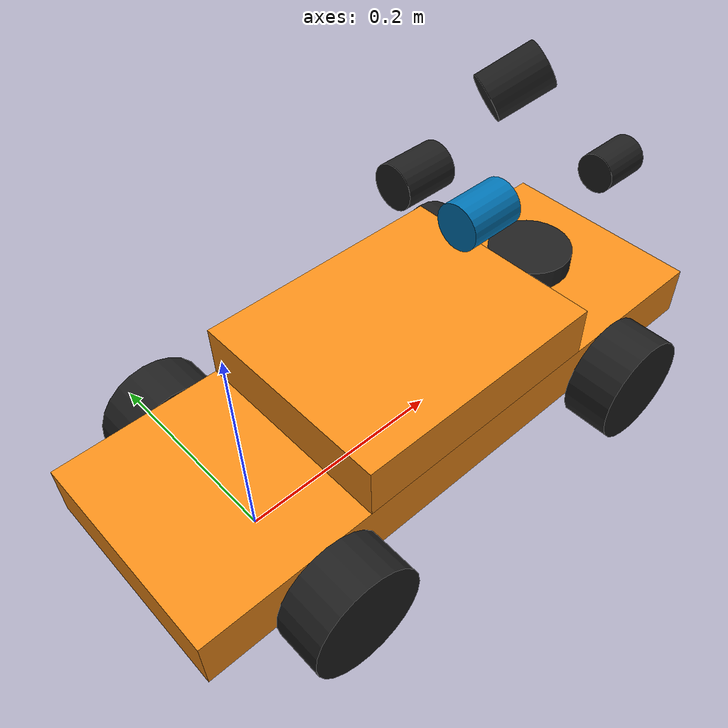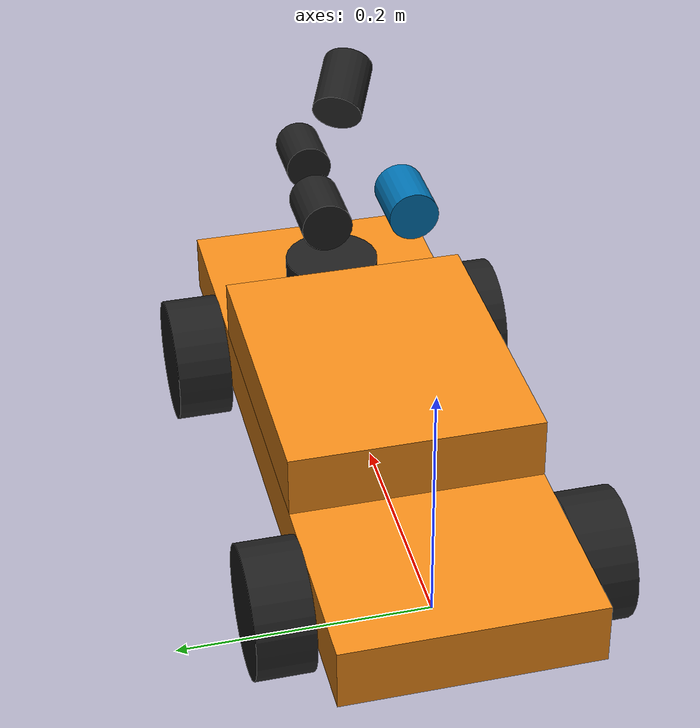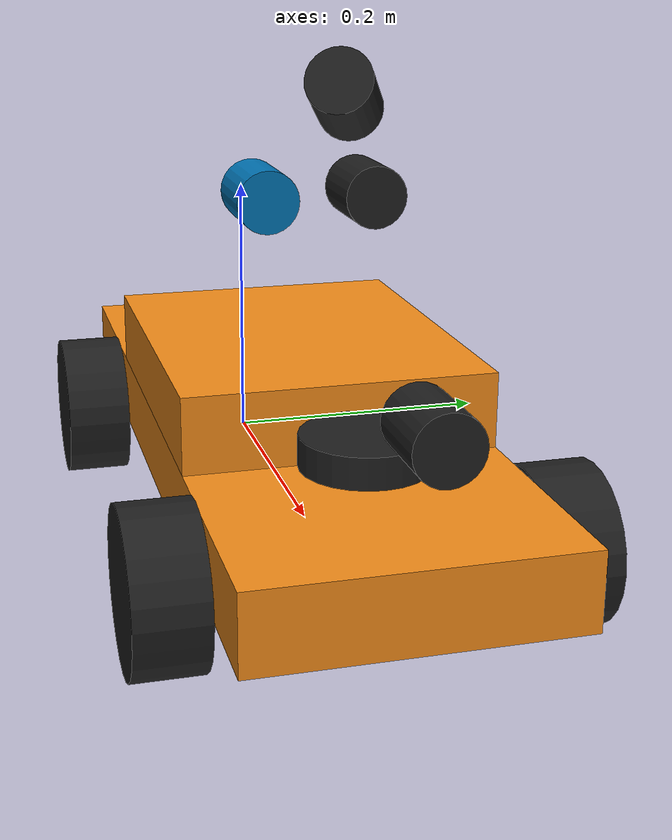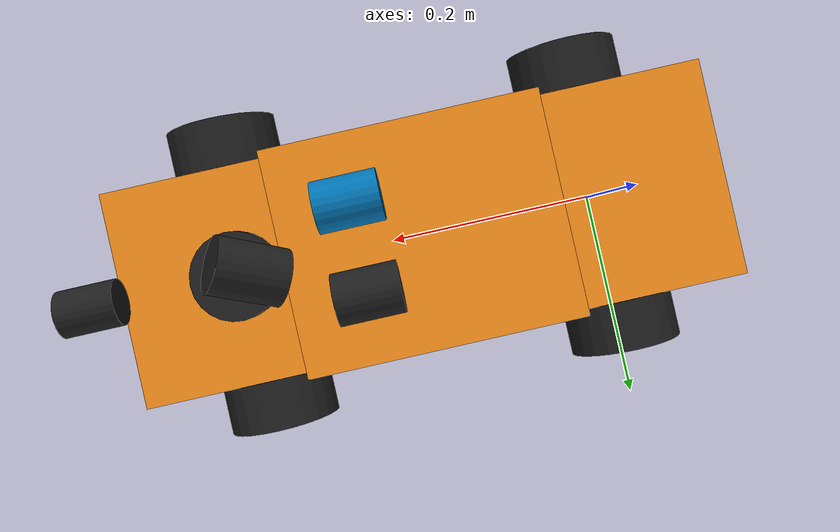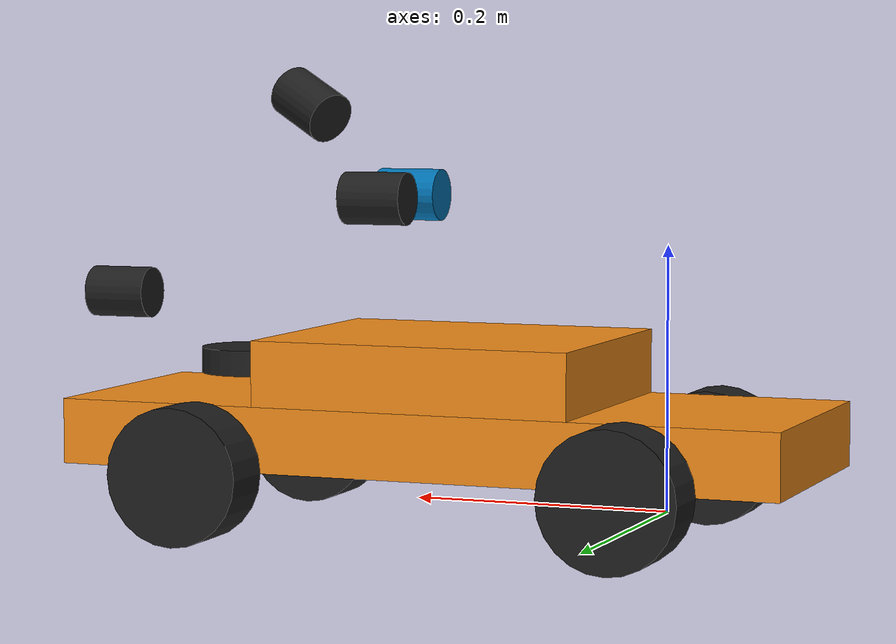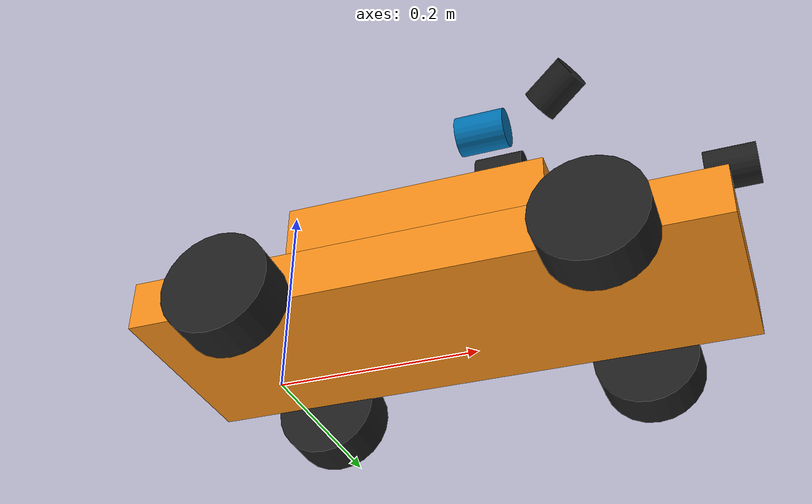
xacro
<?xml version="1.0"?>

<robot name="my_robot" xmlns:xacro="http://www.ros.org/wiki/xacro">

  <xacro:property name="chassis_mass" value="3.7" />
  <xacro:property name="chassis_length" value="0.568" />
  <xacro:property name="chassis_width" value="0.203" />
  <xacro:property name="chassis_height" value="0.05" />

  <xacro:property name="lidar_height" value="0.02"/>
  <xacro:property name="lidar_radius" value="0.04"/>
  <xacro:property name="lidar_mass" value="0.1" />
  <!-- Taken from physical parameters (wr8_software/launch/base/lidar.launch) -->
  <xacro:property name="base_link_2_laser_xyz" value="${chassis_length*0.6} 0 0.05" />

  <xacro:property name="box_mass" value="0.5" />
  <xacro:property name="box_length" value="0.25" />
  <xacro:property name="box_width" value="${chassis_width}" />
  <xacro:property name="box_height" value="0.05" />

  <xacro:property name="wheel_width" value="0.046" />
  <xacro:property name="wheel_radius" value="0.0525" />
  <xacro:property name="wheel_mass" value="0.056" />
  <xacro:property name="wheel_chassis_bias" value="${wheel_width/2}" />
  <xacro:property name="wheelbase" value="0.340" />
  <xacro:property name="half_wheelbase" value="${wheelbase/2}" />

  <xacro:property name="half_track_width" value="${(chassis_width/2 + wheel_chassis_bias)}" />

  <!-- https://github.com/jbpassot/ackermann_vehicle/blob/master/ackermann_vehicle_description/urdf/em_3905.urdf.xacro -->
  <xacro:property name="degrees_90" value="${pi/2}"/>
  <xacro:property name="degrees_45" value="${pi/4}"/>
  <xacro:property name="degrees_35" value="${7*pi/36}"/>
  <xacro:property name="degrees_30" value="${pi/6}"/>
  <xacro:property name="degrees_25" value="${5*pi/36}"/>
  <xacro:property name="degrees_15" value="${pi/12}"/>

  <xacro:property name="mid_wheel_turn_limit" value="${degrees_30}"/>
  <xacro:property name="wheel_turn_limit" value="${degrees_45}"/>

  <xacro:property name="wheel_friction" value="1.75" />

  <!-- Camera properties -->
  <xacro:property name="camera_height" value="0.05"/>
  <xacro:property name="camera_radius" value="0.02"/>
  <xacro:property name="camera_mass" value="0.05"/>

  <!-- Stereo camera properties -->
  <xacro:property name="stereo_base_link_lcam_xyz" value="0.05 0.035 0.18"/>
  <xacro:property name="stereo_base_link_rcam_xyz" value="0.05 -0.035 0.18"/>

  <xacro:arg name="odom_enabled" default="false" />
  <xacro:arg name="pub_tf" default="true" />
  <xacro:arg name="robot_name" default="" />

  <xacro:arg name="enable_stereo" default="true" />

  <!-- Gazebo plugins -->
  <gazebo>
    <!-- Simulated vehicle interface -->
    <plugin name="wr8_interface_plugin" filename="libautonet_robot_interface_plugin.so" >
      <robotName>$(arg robot_name)</robotName>
      <pubTf>$(arg pub_tf)</pubTf>
      <tfFreq>100.0</tfFreq>
      <odomEnabled>$(arg odom_enabled)</odomEnabled>
      <maxSteerRad>${mid_wheel_turn_limit}</maxSteerRad>
      <wheelbase>${wheelbase}</wheelbase>
      <wheelRadius>${wheel_radius}</wheelRadius>
      <trackWidth>${half_track_width*2}</trackWidth>
    </plugin>

    <!-- Publish current joint angles -->
    <plugin name="joint_state_publisher" filename="libgazebo_ros_joint_state_publisher.so">
        <robotNamespace>$(arg robot_name)</robotNamespace>
        <jointName>
            fl_steer_joint,
            fr_steer_joint,
            fl_speed_joint,
            fr_speed_joint,
            rl_speed_joint,
            rr_speed_joint
        </jointName>
        <updateRate>100</updateRate>
        <alwaysOn>true</alwaysOn>
    </plugin>
  </gazebo>

  <!-- INERTIAL MACROS -->
  <xacro:macro name="null_inertial">
    <inertial>
      <mass value="0.001"/>
      <inertia ixx="0.001" ixy="0" ixz="0"
               iyy="0.001" iyz="0"
               izz="0.001"/>
    </inertial>
  </xacro:macro>

  <xacro:macro name="solid_cuboid_inertial"
               params="width length height mass *origin">
    <inertial>
      <xacro:insert_block name="origin"/>
      <mass value="${mass}"/>
      <inertia ixx="${mass * (width * width + height * height) / 12}"
               ixy="0" ixz="0"
               iyy="${mass * (length * length + height * height) / 12}"
               iyz="0"
               izz="${mass * (width * width + length * length) / 12}"/>
    </inertial>
  </xacro:macro>

  <xacro:macro name="solid_cylinder_inertial"
               params="r h mass *origin">
    <inertial>
      <xacro:insert_block name="origin"/>
      <mass value="${mass}"/>
      <inertia ixx="${mass / 12 * (3 * r * r + h * h)}" ixy="0.0" ixz="0.0"
               iyy="${mass / 12 * (3 * r * r + h * h)}" iyz="0.0"
               izz="${mass / 2 * r * r}" />
    </inertial>
  </xacro:macro>
  <!-- INERTIAL MACROS END -->

  <xacro:macro name="wheel_object" params="name">
    <link name="${name}">
      <visual>
        <origin xyz="0 0 0" rpy="0 0 0" />
        <geometry>
          <cylinder length="${wheel_width}" radius="${wheel_radius}"/>
        </geometry>
      </visual>

      <collision>
        <origin xyz="0 0 0" rpy="0 0 0" />
        <geometry>
          <cylinder length="${wheel_width}" radius="${wheel_radius}"/>
        </geometry>
      </collision>

      <xacro:solid_cylinder_inertial
          r="${wheel_radius}" h="${wheel_width}"
          mass="${wheel_mass}" >
        <origin xyz="0 0 0" rpy="0 0 0" />
      </xacro:solid_cylinder_inertial>
    </link>

    <gazebo reference="${name}">
      <mu1>${wheel_friction}</mu1>
      <mu2>${wheel_friction}</mu2>
      <material>Gazebo/Black</material>
      <kp>10000000</kp>
      <kd>1</kd>
    </gazebo>
  </xacro:macro>

  <xacro:macro name="speed_wheel" params="name base_name xyz ">
    <xacro:wheel_object name="wheel_${name}" />

    <joint name="${name}_speed_joint" type="continuous">
      <parent link="${base_name}"/>
      <child link="wheel_${name}"/>
      <origin xyz="${xyz}" rpy="${pi/2} 0 0"/>
      <axis xyz="0 0 -1"/>
      <limit effort="1000.0" velocity="22.0" />
    </joint>
  </xacro:macro>

  <xacro:macro name="steer_wheel" params="name base_name xyz">
    <xacro:wheel_object name="wheel_${name}" />

    <link name="steer_${name}">
      <xacro:null_inertial/>
    </link>

    <joint name="${name}_steer_joint" type="revolute">
      <limit lower="${-wheel_turn_limit}"
             upper="${wheel_turn_limit}"
             effort="0" velocity="0"/>
      <parent link="${base_name}"/>
      <child link="steer_${name}"/>
      <origin xyz="${xyz}" rpy="0 0 0"/>
      <axis xyz="0 0 1"/>
    </joint>

    <joint name="${name}_speed_joint" type="continuous">
      <parent link="steer_${name}"/>
      <child link="wheel_${name}"/>
      <origin xyz="0 0 0" rpy="${pi/2} 0 0"/>
      <axis xyz="0 0 -1"/>
      <limit effort="1000.0" velocity="22.0" />
    </joint>

  </xacro:macro>

  <!-- base_footprint - base_link on floor -->
  <link name="base_footprint">
  </link>
  <gazebo reference="base_footprint"/>

  <link name="base_link">
  </link>
  <gazebo reference="base_link"/>

  <link name="base_center">
    <visual>
      <origin xyz="0 0 0" rpy="0 0 0" />
      <geometry>
        <box size="${chassis_length} ${chassis_width} ${chassis_height}"/>
      </geometry>
    </visual>
    <collision>
      <origin xyz="0 0 0" rpy="0 0 0" />
      <geometry>
        <box size="${chassis_length} ${chassis_width} ${chassis_height}"/>
      </geometry>
    </collision>
    <xacro:solid_cuboid_inertial
          length="${chassis_length}" width="${chassis_width}"
          height="${chassis_height}" mass="${chassis_mass}">
      <origin xyz="0 0 0" rpy="0 0 0" />
    </xacro:solid_cuboid_inertial>
  </link>
  <gazebo reference="base_center">
      <material>Gazebo/Orange</material>
  </gazebo>

  <joint name="base_footprint_2_link" type="fixed">
    <parent link="base_footprint"/>
    <child link="base_link"/>
    <!-- base_footprint - base_link on floor -->
    <origin xyz="0 0 ${wheel_radius}" rpy="0 0 0"/>
  </joint>

  <joint name="base_link_2_center" type="fixed">
    <parent link="base_link"/>
    <child link="base_center"/>
    <origin xyz="${wheelbase/2} 0 0" rpy="0 0 0"/>
  </joint>

<link name="base_box">
    <visual>
      <origin xyz="0 0 ${box_height}" rpy="0 0 0" />
      <geometry>
        <box size="${box_length} ${box_width} ${box_height}"/>
      </geometry>
    </visual>
    <collision>
      <origin xyz="0 0 ${box_height}" rpy="0 0 0" />
      <geometry>
        <box size="${box_length} ${box_width} ${box_height}"/>
      </geometry>
    </collision>
    <xacro:solid_cuboid_inertial
          length="${box_length}" width="${box_width}"
          height="${box_height}" mass="${box_mass}">
      <origin xyz="0 0 ${box_height}" rpy="0 0 0" />
    </xacro:solid_cuboid_inertial>
  </link>
  <gazebo reference="base_box">
      <material>Gazebo/Orange</material>
  </gazebo>
  <joint name="base_box_link" type="fixed">
    <parent link="base_center"/>
    <child link="base_box"/>
    <origin xyz="0 0 0" rpy="0 0 0"/>
  </joint>

  <xacro:speed_wheel name="rl" base_name="base_center"
                     xyz="${-half_wheelbase} ${-half_track_width} ${-chassis_height/2}" />
  <xacro:speed_wheel name="rr" base_name="base_center"
                     xyz="${-half_wheelbase} ${half_track_width} ${-chassis_height/2}" />
  <xacro:steer_wheel name="fl" base_name="base_center"
                     xyz="${half_wheelbase} ${-half_track_width} ${-chassis_height/2}" />
  <xacro:steer_wheel name="fr" base_name="base_center"
                     xyz="${half_wheelbase} ${half_track_width} ${-chassis_height/2}" />

  <!-- Setup LIDAR -->
  <link name="laser">
    <xacro:solid_cylinder_inertial
        r="${lidar_radius}" h="${lidar_height}"
        mass="${lidar_mass}" >
      <origin xyz="0 0 0" rpy="0 0 0" />
    </xacro:solid_cylinder_inertial>
    <collision>
      <origin xyz="0 0 0" rpy="0 0 0" />
      <geometry>
        <cylinder length="${lidar_height}" radius="${lidar_radius}"/>
      </geometry>
    </collision>
    <visual>
      <origin xyz="0 0 0" rpy="0 0 0" />
      <geometry>
        <cylinder length="${lidar_height}" radius="${lidar_radius}"/>
      </geometry>
    </visual>
  </link>

  <joint name="laser_joint" type="fixed">
    <child link="laser" />
    <parent link="base_link" />
    <origin xyz="${base_link_2_laser_xyz}" />
  </joint>

  <gazebo reference="laser">
    <material>Gazebo/Black</material>

    <sensor type="ray" name="head_hokuyo_sensor">
      <visualize>true</visualize>
      <update_rate>10</update_rate>
      <ray>
        <scan>
          <horizontal>
            <samples>513</samples>
            <resolution>1</resolution>

            <min_angle>${-2*pi/3}</min_angle>
            <max_angle>${+2*pi/3}</max_angle>

          </horizontal>
        </scan>
        <range>
          <min>0.15</min>
          <max>4</max>
          <resolution>0.01</resolution>
        </range>
        <noise>
          <type>gaussian</type>
          <mean>0.0</mean>
          <stddev>0.02</stddev>
        </noise>
      </ray>
      <plugin name="gazebo_ros_head_hokuyo_controller" filename="libgazebo_ros_laser.so">
        <topicName>$(arg robot_name)/scan</topicName>
        <frameName>laser</frameName>
      </plugin>
    </sensor>
  </gazebo>

  <!-- Camera link -->
  <xacro:macro name="camera_link" params="name">
    <link name="${name}_frame">
      <xacro:solid_cylinder_inertial
          r="${camera_radius}" h="${camera_height}"
          mass="${camera_mass}" >
        <origin xyz="0 0 0" rpy="0 ${degrees_90} 0" />
      </xacro:solid_cylinder_inertial>
      <collision>
        <origin xyz="0 0 0" rpy="0 ${degrees_90} 0" />
        <geometry>
          <cylinder length="${camera_height}" radius="${camera_radius}"/>
        </geometry>
      </collision>
      <visual>
        <origin xyz="0 0 0" rpy="0 ${degrees_90} 0" />
        <geometry>
          <cylinder length="${camera_height}" radius="${camera_radius}"/>
        </geometry>
      </visual>
    </link>
  </xacro:macro>

  <!-- Single camera macro -->
  <xacro:macro name="single_camera" params="name xyz rpy fov width height">
    <xacro:camera_link name="${name}" />

    <joint name="${name}_joint" type="fixed">
      <child link="${name}_frame" />
      <parent link="base_box" />
      <origin xyz="${xyz}" rpy="${rpy}" />
    </joint>

    <link name="${name}_optical_frame"/>

    <joint name="${name}_optical_frame_joint" type="fixed">
      <origin xyz="0 0 0" rpy="-${degrees_90} 0.0 -${degrees_90}" />
      <parent link="${name}_frame" />
      <child link="${name}_optical_frame"/>
    </joint>

    <gazebo reference="${name}_frame">
      <material>Gazebo/Black</material>

      <sensor type="camera" name="${name}">
        <update_rate>30.0</update_rate>
        <camera name="${name}">
          <horizontal_fov>${fov}</horizontal_fov>
          <image>
            <width>${width}</width>
            <height>${height}</height>
            <format>R8G8B8</format>
          </image>
          <clip>
            <near>0.02</near>
            <far>300</far>
          </clip>
          <noise>
            <type>gaussian</type>
            <mean>0.0</mean>
            <stddev>0.001</stddev>
          </noise>
        </camera>
        <plugin name="${name}_controller" filename="libgazebo_ros_camera.so">
          <alwaysOn>true</alwaysOn>
          <updateRate>30.0</updateRate>
          <cameraName>$(arg robot_name)/${name}</cameraName>
          <imageTopicName></imageTopicName>
          <cameraInfoTopicName>camera_info</cameraInfoTopicName>
          <frameName>${name}_optical_frame</frameName>
          <hackBaseline>0.07</hackBaseline>
          <distortionK1>0.0</distortionK1>
          <distortionK2>0.0</distortionK2>
          <distortionK3>0.0</distortionK3>
          <distortionT1>0.0</distortionT1>
          <distortionT2>0.0</distortionT2>
        </plugin>
      </sensor>
    </gazebo>
  </xacro:macro>

  <!-- Stereo camera macro -->
  <xacro:macro name="stereo_camera" params="name fov">
    <xacro:camera_link name="${name}_left" />
    <xacro:camera_link name="${name}_right" />

    <joint name="${name}_left_joint" type="fixed">
      <child link="${name}_left_frame" />
      <parent link="base_center" />
      <origin xyz="${stereo_base_link_lcam_xyz}" rpy="0 0 0" />
    </joint>

    <joint name="${name}_right_joint" type="fixed">
      <child link="${name}_right_frame" />
      <parent link="base_center" />
      <origin xyz="${stereo_base_link_rcam_xyz}" rpy="0 0 0" />
    </joint>

    <link name="${name}_optical_frame"/>

    <joint name="${name}_optical_frame_joint" type="fixed">
      <origin xyz="0 0 0" rpy="-${degrees_90} 0.0 -${degrees_90}" />
      <parent link="${name}_left_frame" />
      <child link="${name}_optical_frame"/>
    </joint>

    <gazebo reference="${name}_left_frame">
      <material>Gazebo/Black</material>

      <sensor type="multicamera" name="${name}">
        <update_rate>30.0</update_rate>
        <camera name="left">
          <horizontal_fov>${fov}</horizontal_fov>
          <image>
            <width>800</width>
            <height>600</height>
            <format>R8G8B8</format>
          </image>
          <clip>
            <near>0.02</near>
            <far>300</far>
          </clip>
          <noise>
            <type>gaussian</type>
            <mean>0.0</mean>
            <stddev>0.007</stddev>
          </noise>
        </camera>
        <camera name="right">
          <pose>0 -0.07 0 0 0 0</pose>
          <horizontal_fov>${fov}</horizontal_fov>
          <image>
            <width>800</width>
            <height>600</height>
            <format>R8G8B8</format>
          </image>
          <clip>
            <near>0.02</near>
            <far>300</far>
          </clip>
          <noise>
            <type>gaussian</type>
            <mean>0.0</mean>
            <stddev>0.007</stddev>
          </noise>
        </camera>
        <plugin name="${name}_controller" filename="libgazebo_ros_multicamera.so">
          <alwaysOn>true</alwaysOn>
          <updateRate>30.0</updateRate>
          <cameraName>$(arg robot_name)/${name}</cameraName>
          <imageTopicName>image_raw</imageTopicName>
          <cameraInfoTopicName>camera_info</cameraInfoTopicName>
          <frameName>${name}_optical_frame</frameName>
          <hackBaseline>0.07</hackBaseline>
          <distortionK1>0.0</distortionK1>
          <distortionK2>0.0</distortionK2>
          <distortionK3>0.0</distortionK3>
          <distortionT1>0.0</distortionT1>
          <distortionT2>0.0</distortionT2>
        </plugin>
      </sensor>
    </gazebo>
  </xacro:macro>

  <xacro:if value="$(arg enable_stereo)">
    <xacro:stereo_camera name="stereo_camera" fov="1.3962634" />
  </xacro:if>
  <xacro:single_camera name="cam_top"     xyz="0.12 0 0.25"               rpy="${pi} -${degrees_25} -${degrees_25}" fov="1.3962634" width="256" height="192" />
  <xacro:single_camera name="cam_bottom"  xyz="${chassis_length/2} 0 0.1" rpy="0 0 0"                           fov="1.3962634" width="256" height="192" />
</robot>
